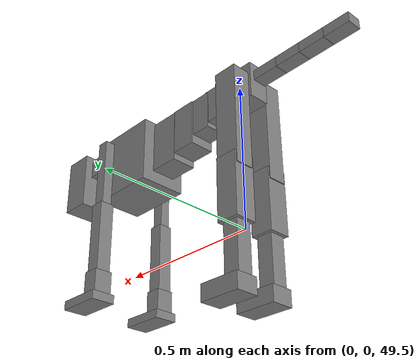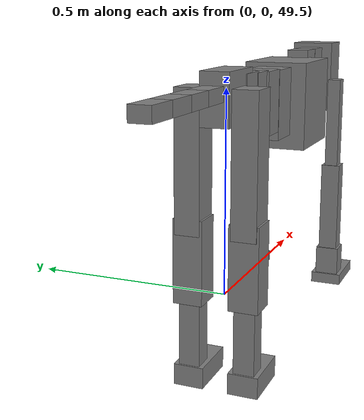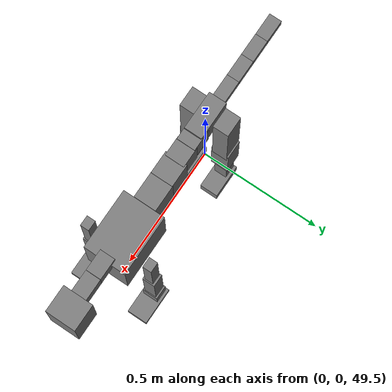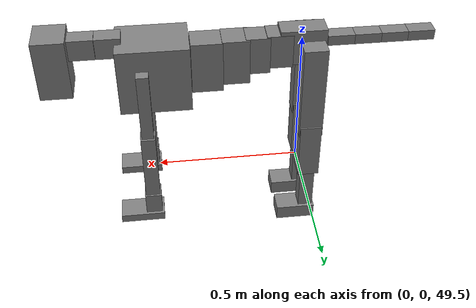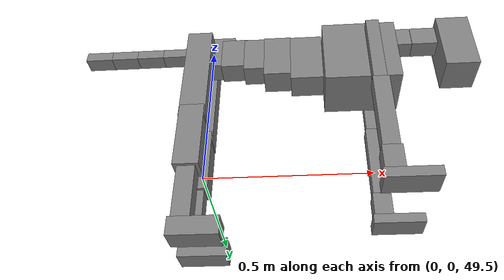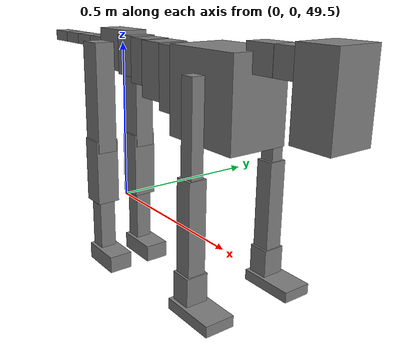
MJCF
<mujoco model="dog">

    <default>
        <joint armature="0.02" stiffness="1" damping="0.2" limited="true"/>
        <geom condim="3" friction="1 0.05 0.05" margin="0.01"/>
        <motor ctrllimited="true" ctrlrange="-1.0 1.0" forcelimited="true" gear="50"/>
    </default>

    <compiler inertiafromgeom="true" angle="radian"/>

    <option timestep="0.016" iterations="50" tolerance="1e-10" solver="Newton" jacobian="dense" cone="pyramidal"/>

    <size nconmax="20000" njmax="60000" nstack="5000000"/>
    <visual>
        <map force="0.1" zfar="30"/>
        <rgba haze="0.15 0.25 0.35 1"/>
        <quality shadowsize="2048"/>
        <global offwidth="800" offheight="800"/>
    </visual>

    <asset>
        <texture type="skybox" builtin="gradient" rgb1="0.3 0.5 0.7" rgb2="0 0 0" width="512" height="512"/>
        <texture name="texplane" type="2d" builtin="checker" rgb1=".2 .3 .4" rgb2=".1 0.15 0.2" width="512" height="512"
                 mark="cross" markrgb=".8 .8 .8"/>
        <texture name="texgeom" type="cube" builtin="flat" mark="cross" width="127" height="1278" rgb1="0.8 0.6 0.4"
                 rgb2="0.8 0.6 0.4" markrgb="1 1 1" random="0.01"/>

        <material name="matplane" reflectance="0.3" texture="texplane" texrepeat="1 1" texuniform="true"/>
        <material name="matgeom" texture="texgeom" texuniform="true" rgba="0.8 0.6 .4 1"/>
    </asset>

    <worldbody>
        <geom name="floor" pos="0 0 0" size="0 0 .25" type="plane" material="matplane" condim="3"/>

        <light directional="false" diffuse=".2 .2 .2" specular="0 0 0" pos="0 0 5" dir="0 0 -1" castshadow="false"/>
        <light mode="targetbodycom" target="torso" directional="false" diffuse=".8 .8 .8" specular="0.3 0.3 0.3"
               pos="0 0 4.0" dir="0 0 -1"/>

        <body name="root" pos="0 0 50">
            <freejoint name="root_1"/>
            <geom type="box" pos="0 0 -0.02" size="0.0774  0.0358  0.063" density="2030"/>

            <body name="spine1" pos="0.054 0 0">
                <joint name="spine1_y" axis="0 1 0" range="0 0.7" limited="true"/>
                <geom type="box" pos="0.02375 0 -0.03" size="0.04375  0.0375  0.05985" density="2030"/>

                <body name="spine2" pos="0.0612 0 0">
                    <joint name="spine2_y" axis="0 1 0" range="-0.15 0.15" limited="true"/>
                    <geom type="box" pos="0.03555  0  -0.04" size="0.04055  0.039  0.06615" density="2030"/>

                    <body name="spine3" pos="0.0730 0 0">
                        <joint name="spine3_y" axis="0 1 0" range="-0.15 0.15" limited="true"/>
                        <geom type="box" pos="0.03555  0  -0.057" size="0.04555  0.0445  0.081" density="2030"/>

                        <body name="spine4" pos="0.0780 0 0">
                            <joint name="spine4_y" axis="0 1 0" range="-0.15 0.15" limited="true"/>
                            <geom type="box" pos="0.05265  0  -0.07" size="0.05265  0.045  0.09135" density="2030"/>

                            <body name="torso" pos="0.1082 0 0">
                                <joint name="torso_y" axis="0 1 0" range="-0.15 0.15" limited="true"/>
                                <geom type="box" pos="0.11925  0  -0.085" size="0.11925  0.085  0.11745"
                                      density="2030"/>

                                <body name="neck1" pos="0.2160  0   0.0180">
                                    <joint name="neck1_y" axis="0 1 0" range="-1.2  -1" limited="true"/>
                                    <geom type="box" pos="0.0423  0  0" size="0.0423  0.03  0.036" density="2325"/>

                                    <body name="neck2" pos="0.0853  0  0">
                                        <joint name="neck2_y" axis="0 1 0" range="0.1  0" limited="true"/>
                                        <geom type="box" pos="0.0423  0  0" size="0.0423  0.03  0.036" density="2325"/>

                                        <body name="head" pos="0.0853  0  0">
                                            <joint name="head_y" axis="0 1 0" range="-0.3  -0.2" limited="true"/>
                                            <geom type="box" pos="0.0531  0  -0.055" size="0.0531  0.06  0.1044"
                                                  density="4030"/>

                                        </body>
                                    </body>
                                </body>

                                <body name="front_shoulder" pos="0.156  0   -0.0480">
                                    <joint name="front_shoulder_y" axis="0 1 0" range="-1 1.5" limited="true"/>
                                    <geom type="box" pos="0 0.13 -0.1085" size="0.0203  0.0174  0.1351" density="1158"/>
                                    <geom type="box" pos="0 -0.13 -0.1085" size="0.0203  0.0174  0.1351"
                                          density="1158"/>

                                    <body name="front_elbow" pos="0  0  -0.2169">
                                        <joint name="front_elbow_y" axis="0 1 0" range="-2 0" limited="true"/>
                                        <geom type="box" pos="0 0.13 -0.1292" size="0.0246  0.0251  0.1292"
                                              density="1081"/>
                                        <geom type="box" pos="0 -0.13 -0.1292" size="0.0246  0.0251  0.1292"
                                              density="1081"/>

                                        <body name="front_wrist" pos="0  0  -0.2584">
                                            <joint name="front_wrist_y" axis="0 1 0" range="-0.2 0" limited="true"/>
                                            <geom type="box" pos="0 0.13 -0.0391" size="0.0281  0.0312  0.0523"
                                                  density="1664"/>
                                            <geom type="box" pos="0 -0.13 -0.0391" size="0.0281  0.0312  0.0523"
                                                  density="1664"/>

                                            <body name="front_finger_end" pos="0  0  -0.0782">
                                                <joint name="front_finger_y" axis="0 1 0" range="-0.4 1"
                                                       limited="true"/>
                                                <geom type="box" pos="0.0414  0.13  0.0003"
                                                      size="0.0759  0.0414  0.0147" density="1515"/>
                                                <geom type="box" pos="0.0414  -0.13  0.0003"
                                                      size="0.0759  0.0414  0.0147" density="1515"/>

                                            </body>

                                        </body>
                                    </body>
                                </body>

                            </body>
                        </body>
                    </body>
                </body>
            </body>

            <body name="back_hip" pos="-0.03 0 -0.018">
                <joint name="back_hip_y" axis="0 1 0" range="-1.5 0.3" limited="true"/>
                <geom type="box" pos="0 0.07 -0.1505" size="0.0402  0.0315  0.1733" density="1154"/>
                <geom type="box" pos="0 -0.07 -0.1505" size="0.0402  0.0315  0.1733" density="1154"/>

                <body name="back_knee" pos="0  0  -0.3011">
                    <joint name="back_knee_y" axis="0 1 0" range="0 2.8" limited="true"/>
                    <geom type="box" pos="0 0.07 -0.0894" size="0.0374  0.0369  0.1049" density="1227"/>
                    <geom type="box" pos="0 -0.07 -0.0894" size="0.0374  0.0369  0.1049" density="1227"/>

                    <body name="back_ankle" pos="0  0  -0.1787">
                        <joint name="back_ankle_y" axis="0 1 0" range="-2.2 0" limited="true"/>
                        <geom type="box" pos="0 0.07 -0.0957" size="0.0263  0.0263  0.1069" density="1284"/>
                        <geom type="box" pos="0 -0.07 -0.0957" size="0.0263  0.0263  0.1069" density="1284"/>

                        <body name="back_toe_end" pos="0  0  -0.1913">
                            <joint name="back_toe_y" axis="0 1 0" range="-0.4 1" limited="true"/>
                            <geom type="box" pos="0.0379  0.07  -0.0117" size="0.0695  0.0379  0.0267" density="1515"/>
                            <geom type="box" pos="0.0379  -0.07  -0.0117" size="0.0695  0.0379  0.0267" density="1515"/>

                        </body>
                    </body>
                </body>
            </body>

            <body name="tail1" pos="-0.074 0 -0.006">
                <joint name="tail1_y" axis="0 1 0" range="-0.2 0.2" limited="true"/>
                <geom type="box" pos="-0.0536  0  0" size="0.045  0.025  0.0175" density="1587"/>

                <body name="tail2" pos="-0.09 0 0">
                    <joint name="tail2_y" axis="0 1 0" range="-0.2 0.2" limited="true"/>
                    <geom type="box" pos="-0.0536  0  0" size="0.045  0.025  0.0175" density="1587"/>

                    <body name="tail3" pos="-0.09 0 0">
                        <joint name="tail3_y" axis="0 1 0" range="-0.2 0.2" limited="true"/>
                        <geom type="box" pos="-0.0536  0  0" size="0.045  0.025  0.0175" density="1587"/>

                        <body name="tail4" pos="-0.09 0 0">
                            <joint name="tail4_y" axis="0 1 0" range="-0.2 0.2" limited="true"/>
                            <geom type="box" pos="-0.0536  0  0" size="0.045  0.025  0.0175" density="1587"/>

                        </body>
                    </body>
                </body>
            </body>
        </body>
    </worldbody>

    <actuator>
        <motor joint="spine1_y" forcerange="-150 150     "/>
        <motor joint="spine2_y" forcerange="-150 150     "/>
        <motor joint="spine3_y" forcerange="-150 150     "/>
        <motor joint="spine4_y" forcerange="-150 150     "/>
        <motor joint="torso_y" forcerange="-150 150     "/>
        <motor joint="neck1_y" forcerange="-100 100       "/>
        <motor joint="neck2_y" forcerange="-100 100       "/>
        <motor joint="head_y" forcerange="-150 150       "/>
        <motor joint="front_shoulder_y" forcerange="-111.28 104.65"/>
        <motor joint="front_elbow_y" forcerange="-182.50 100.19"/>
        <motor joint="front_wrist_y" forcerange="-123.18 126.57"/>
        <motor joint="front_finger_y" forcerange="-81.02 99.83"/>
        <motor joint="back_hip_y" forcerange="-350.19 270.16"/>
        <motor joint="back_knee_y" forcerange="-359.82 376.88"/>
        <motor joint="back_angle_y" forcerange="-181.96 139.11"/>
        <motor joint="back_toe_y" forcerange="-113.30 110.10"/>
        <motor joint="tail1_y" forcerange="-50 50     "/>
        <motor joint="tail2_y" forcerange="-50 50     "/>
        <motor joint="tail3_y" forcerange="-50 50     "/>
        <motor joint="tail4_y" forcerange="-50 50     "/>
    </actuator>
</mujoco>
